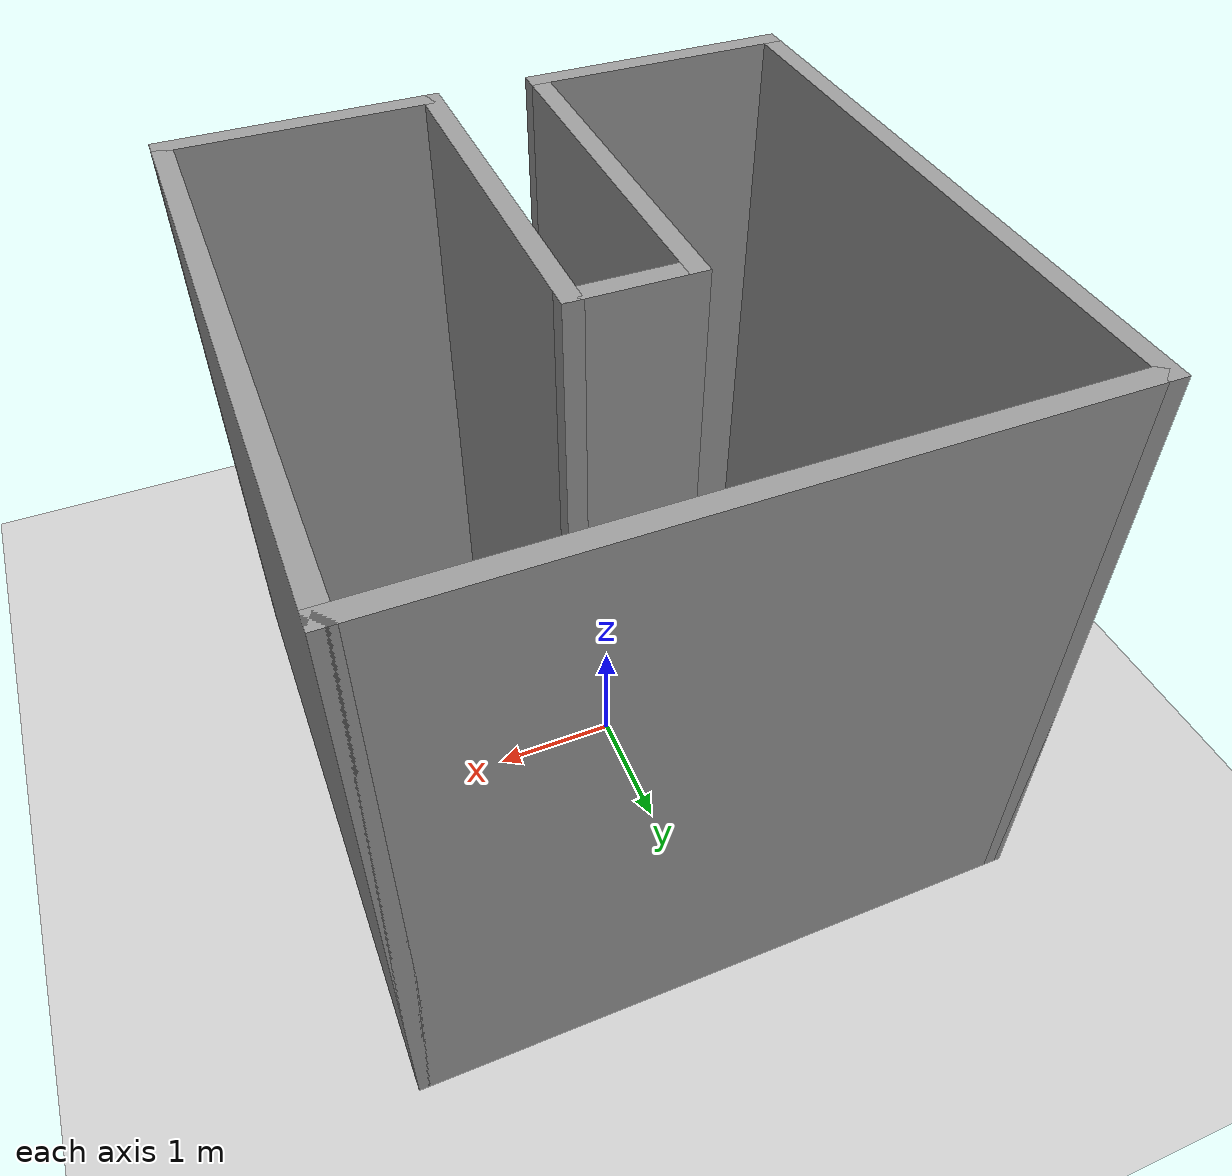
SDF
<sdf version="1.6">
 <world name="default">
  <include><uri>model://ground_plane</uri></include>
  <include><uri>model://sun</uri></include>
  <scene><shadows>false</shadows></scene>
  <physics type="ode">
   <real_time_update_rate>1000.0</real_time_update_rate>
   <max_step_size>0.001</max_step_size>
   <real_time_factor>1</real_time_factor>
   <ode>
    <solver>
     <type>quick</type>
     <iters>150</iters>
     <precon_iters>0</precon_iters>
     <sor>1.400000</sor>
     <use_dynamic_moi_rescaling>1</use_dynamic_moi_rescaling>
    </solver>
    <constraints>
     <cfm>0.00001</cfm>
     <erp>0.2</erp>
     <contact_max_correcting_vel>2000.000000</contact_max_correcting_vel>
     <contact_surface_layer>0.01000</contact_surface_layer>
    </constraints>
   </ode>
  </physics>
  <include><uri>model://env8</uri></include>
 </world>
</sdf>

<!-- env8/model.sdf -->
<sdf version='1.7'>
  <model name='env8'>
    <link name='Wall_10'>
      <collision name='Wall_10_Collision'>
        <geometry>
          <box>
            <size>3 0.15 5</size>
          </box>
        </geometry>
        <pose>0 0 1.25 0 -0 0</pose>
      </collision>
      <visual name='Wall_10_Visual'>
        <pose>0 0 1.25 0 -0 0</pose>
        <geometry>
          <box>
            <size>3 0.15 5</size>
          </box>
        </geometry>
        <material>
          <script>
            <uri>file://media/materials/scripts/gazebo.material</uri>
            <name>Gazebo/Grey</name>
          </script>
          <ambient>1 1 1 1</ambient>
        </material>
        <meta>
          <layer>0</layer>
        </meta>
      </visual>
      <pose>-0.425 -1 1.25 0 0 -1.5708</pose>
    </link>
    <link name='Wall_11'>
      <collision name='Wall_11_Collision'>
        <geometry>
          <box>
            <size>2.15 0.15 5</size>
          </box>
        </geometry>
        <pose>0 0 1.25 0 -0 0</pose>
      </collision>
      <visual name='Wall_11_Visual'>
        <pose>0 0 1.25 0 -0 0</pose>
        <geometry>
          <box>
            <size>2.15 0.15 5</size>
          </box>
        </geometry>
        <material>
          <script>
            <uri>file://media/materials/scripts/gazebo.material</uri>
            <name>Gazebo/Grey</name>
          </script>
          <ambient>1 1 1 1</ambient>
        </material>
        <meta>
          <layer>0</layer>
        </meta>
      </visual>
      <pose>-1.425 -2.425 1.25 0 -0 3.14159</pose>
    </link>
    <link name='Wall_12'>
      <collision name='Wall_12_Collision'>
        <geometry>
          <box>
            <size>5 0.15 5</size>
          </box>
        </geometry>
        <pose>0 0 1.25 0 -0 0</pose>
      </collision>
      <visual name='Wall_12_Visual'>
        <pose>0 0 1.25 0 -0 0</pose>
        <geometry>
          <box>
            <size>5 0.15 5</size>
          </box>
        </geometry>
        <material>
          <script>
            <uri>file://media/materials/scripts/gazebo.material</uri>
            <name>Gazebo/Grey</name>
          </script>
          <ambient>1 1 1 1</ambient>
        </material>
        <meta>
          <layer>0</layer>
        </meta>
      </visual>
      <pose>-2.425 0 1.25 0 -0 1.5708</pose>
    </link>
    <link name='Wall_5'>
      <collision name='Wall_5_Collision'>
        <geometry>
          <box>
            <size>5 0.15 5</size>
          </box>
        </geometry>
        <pose>0 0 1.25 0 -0 0</pose>
      </collision>
      <visual name='Wall_5_Visual'>
        <pose>0 0 1.25 0 -0 0</pose>
        <geometry>
          <box>
            <size>5 0.15 5</size>
          </box>
        </geometry>
        <material>
          <script>
            <uri>file://media/materials/scripts/gazebo.material</uri>
            <name>Gazebo/Grey</name>
          </script>
          <ambient>1 1 1 1</ambient>
        </material>
        <meta>
          <layer>0</layer>
        </meta>
      </visual>
      <pose>0 2.425 1.25 0 -0 0</pose>
    </link>
    <link name='Wall_6'>
      <collision name='Wall_6_Collision'>
        <geometry>
          <box>
            <size>5 0.15 5</size>
          </box>
        </geometry>
        <pose>0 0 1.25 0 -0 0</pose>
      </collision>
      <visual name='Wall_6_Visual'>
        <pose>0 0 1.25 0 -0 0</pose>
        <geometry>
          <box>
            <size>5 0.15 5</size>
          </box>
        </geometry>
        <material>
          <script>
            <uri>file://media/materials/scripts/gazebo.material</uri>
            <name>Gazebo/Grey</name>
          </script>
          <ambient>1 1 1 1</ambient>
        </material>
        <meta>
          <layer>0</layer>
        </meta>
      </visual>
      <pose>2.425 0 1.25 0 0 -1.5708</pose>
    </link>
    <link name='Wall_7'>
      <collision name='Wall_7_Collision'>
        <geometry>
          <box>
            <size>2.15 0.15 5</size>
          </box>
        </geometry>
        <pose>0 0 1.25 0 -0 0</pose>
      </collision>
      <visual name='Wall_7_Visual'>
        <pose>0 0 1.25 0 -0 0</pose>
        <geometry>
          <box>
            <size>2.15 0.15 5</size>
          </box>
        </geometry>
        <material>
          <script>
            <uri>file://media/materials/scripts/gazebo.material</uri>
            <name>Gazebo/Grey</name>
          </script>
          <ambient>1 1 1 1</ambient>
        </material>
        <meta>
          <layer>0</layer>
        </meta>
      </visual>
      <pose>1.425 -2.425 1.25 0 -0 3.14159</pose>
    </link>
    <link name='Wall_8'>
      <collision name='Wall_8_Collision'>
        <geometry>
          <box>
            <size>3 0.15 5</size>
          </box>
        </geometry>
        <pose>0 0 1.25 0 -0 0</pose>
      </collision>
      <visual name='Wall_8_Visual'>
        <pose>0 0 1.25 0 -0 0</pose>
        <geometry>
          <box>
            <size>3 0.15 5</size>
          </box>
        </geometry>
        <material>
          <script>
            <uri>file://media/materials/scripts/gazebo.material</uri>
            <name>Gazebo/Grey</name>
          </script>
          <ambient>1 1 1 1</ambient>
        </material>
        <meta>
          <layer>0</layer>
        </meta>
      </visual>
      <pose>0.425 -1 1.25 0 -0 1.5708</pose>
    </link>
    <link name='Wall_9'>
      <collision name='Wall_9_Collision'>
        <geometry>
          <box>
            <size>1 0.15 5</size>
          </box>
        </geometry>
        <pose>0 0 1.25 0 -0 0</pose>
      </collision>
      <visual name='Wall_9_Visual'>
        <pose>0 0 1.25 0 -0 0</pose>
        <geometry>
          <box>
            <size>1 0.15 5</size>
          </box>
        </geometry>
        <material>
          <script>
            <uri>file://media/materials/scripts/gazebo.material</uri>
            <name>Gazebo/Grey</name>
          </script>
          <ambient>1 1 1 1</ambient>
        </material>
        <meta>
          <layer>0</layer>
        </meta>
      </visual>
      <pose>0 0.425 1.25 0 -0 3.14159</pose>
    </link>
    <static>1</static>
  </model>
</sdf>
